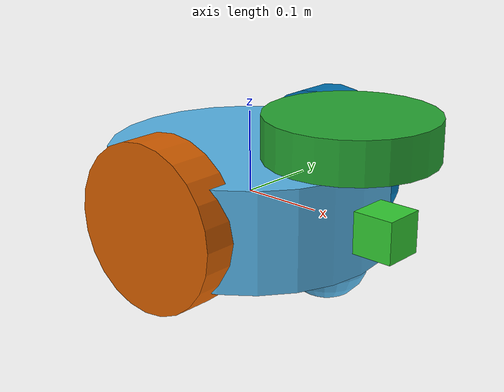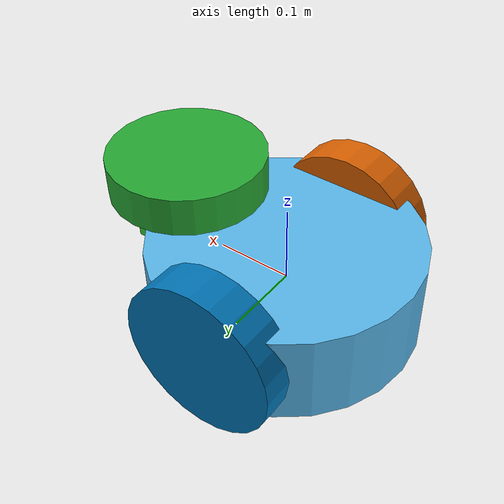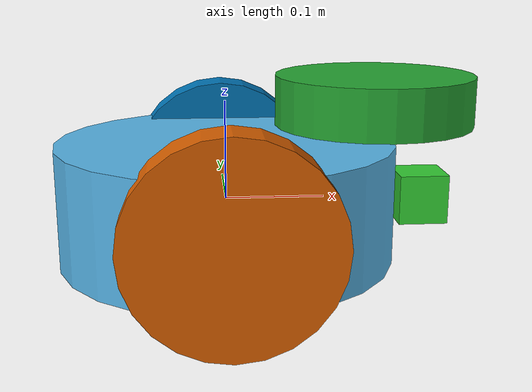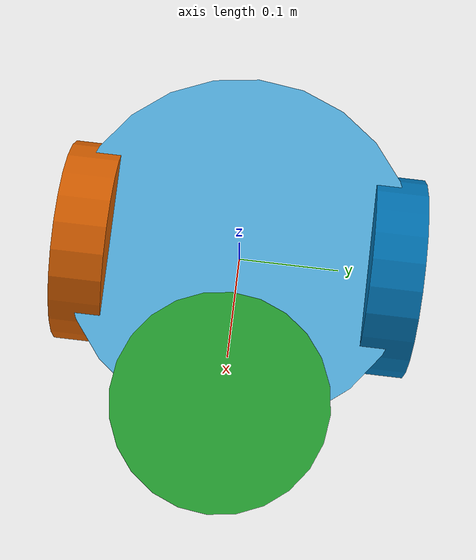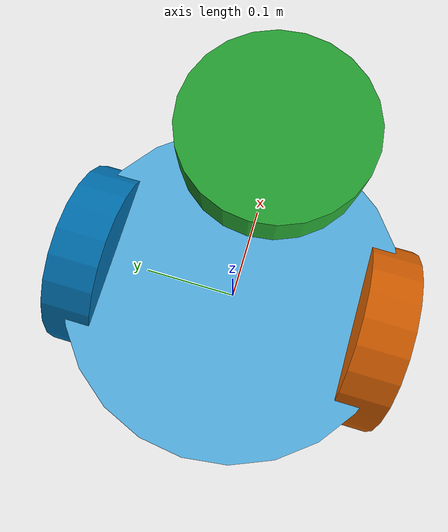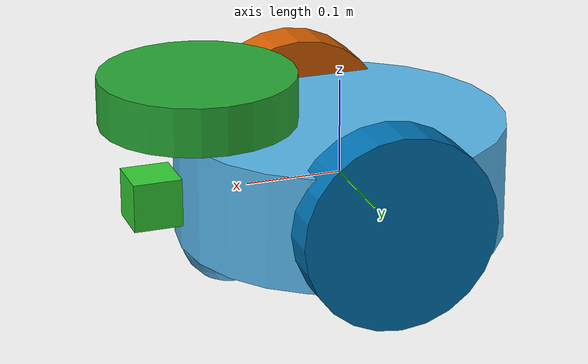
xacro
<?xml version="1.0"?>
<robot name="my_robot" xmlns:xacro="http://www.ros.org/wiki/xacro">

  <!-- Gazebo extension file -->
  <xacro:include filename="$(find myrobot_description)/urdf/my_robot.gazebo" />

  <!-- Base footprint -->
  <link name="robot_footprint" />

  <joint name="robot_footprint_joint" type="fixed">
    <origin xyz="0 0 0" rpy="0 0 0"/>
    <parent link="robot_footprint"/>
    <child link="chassis"/>
  </joint>

  <!-- === CHASSIS === -->
  <link name="chassis">
    <inertial>
      <mass value="15.0"/>
      <origin xyz="0.0 0 0" rpy="0 0 0"/>
      <inertia ixx="0.15" ixy="0" ixz="0" iyy="0.15" iyz="0" izz="0.2"/>
    </inertial>

    <collision name="collision">
      <origin xyz="0 0 0" rpy="0 0 0"/>
      <geometry>
        <cylinder radius="0.17" length="0.12"/>
      </geometry>
    </collision>

    <visual name="chassis_visual">
      <origin xyz="0 0 0" rpy="0 0 0"/>
      <geometry>
        <cylinder radius="0.17" length="0.12"/>
      </geometry>
    </visual>

    <!-- Casters -->
    <collision name="back_caster_collision">
      <origin xyz="-0.12 0 -0.05" rpy="0 0 0"/>
      <geometry><sphere radius="0.0499"/></geometry>
    </collision>
    <visual name="back_caster_visual">
      <origin xyz="-0.12 0 -0.05" rpy="0 0 0"/>
      <geometry><sphere radius="0.05"/></geometry>
    </visual>

    <collision name="front_caster_collision">
      <origin xyz="0.12 0 -0.05" rpy="0 0 0"/>
      <geometry><sphere radius="0.0499"/></geometry>
    </collision>
    <visual name="front_caster_visual">
      <origin xyz="0.12 0 -0.05" rpy="0 0 0"/>
      <geometry><sphere radius="0.05"/></geometry>
    </visual>
  </link>

  <!-- === CAMERA === -->
  <link name="camera">
    <inertial>
      <mass value="0.1"/>
      <origin xyz="0 0 0" rpy="0 0 0"/>
      <inertia
          ixx="1e-6" ixy="0" ixz="0"
          iyy="1e-6" iyz="0"
          izz="1e-6"
      />
    </inertial>
    <collision>
      <geometry><box size="0.05 0.05 0.05"/></geometry>
    </collision>
    <visual>
      <geometry><box size="0.05 0.05 0.05"/></geometry>
      <material name="camera_color">
        <color rgba="0.2 0.8 0.2 1.0"/>
      </material>
    </visual>
  </link>

  <joint name="camera_joint" type="fixed">
    <origin xyz="0.2 0 0" rpy="0 0 0"/>
    <parent link="chassis"/>
    <child link="camera"/>
  </joint>

  <!-- === LIDAR === -->
  <link name="lidar">
        <visual>
            <geometry>
                <cylinder length="0.05" radius="0.1"/>
            </geometry>
            <material name="green"/>
        </visual>
        <collision>
            <geometry>
                <cylinder length="0.05" radius="0.1"/>
            </geometry>
        </collision>
        <inertial>
            <mass value="0.2"/>
            <inertia ixx="0.001" ixy="0" ixz="0" iyy="0.001" iyz="0" izz="0.001"/>
        </inertial>
    </link>

  <joint name="lidar_joint" type="fixed">
        <parent link="chassis"/>
        <child link="lidar"/>
        <origin xyz="0.15 0 0.1" rpy="0 0 0"/>
        <axis xyz="0 0 1"/>
    </joint>

  <!-- === WHEELS === -->
  <link name="left_wheel">
    <inertial>
      <mass value="5"/>
      <origin xyz="0 0 0" rpy="0 1.5707 1.5707"/>
      <inertia ixx="0.1" ixy="0" ixz="0" iyy="0.1" iyz="0" izz="0.1"/>
    </inertial>
    <collision>
      <origin xyz="0 0 0" rpy="0 1.5707 1.5707"/>
      <geometry><cylinder radius="0.1" length="0.05"/></geometry>
    </collision>
    <visual>
      <origin xyz="0 0 0" rpy="0 1.5707 1.5707"/>
      <geometry><cylinder radius="0.1" length="0.05"/></geometry>
    </visual>
  </link>

  <joint name="left_wheel_joint" type="continuous">
    <origin xyz="0 0.15 0" rpy="0 0 0"/>
    <parent link="chassis"/>
    <child link="left_wheel"/>
    <axis xyz="0 1 0"/>
  </joint>

  <link name="right_wheel">
    <inertial>
      <mass value="5"/>
      <origin xyz="0 0 0" rpy="0 1.5707 1.5707"/>
      <inertia ixx="0.1" ixy="0" ixz="0" iyy="0.1" iyz="0" izz="0.1"/>
    </inertial>
    <collision>
      <origin xyz="0 0 0" rpy="0 1.5707 1.5707"/>
      <geometry><cylinder radius="0.1" length="0.05"/></geometry>
    </collision>
    <visual>
      <origin xyz="0 0 0" rpy="0 1.5707 1.5707"/>
      <geometry><cylinder radius="0.1" length="0.05"/></geometry>
    </visual>
  </link>

  <joint name="right_wheel_joint" type="continuous">
    <origin xyz="0 -0.15 0" rpy="0 0 0"/>
    <parent link="chassis"/>
    <child link="right_wheel"/>
    <axis xyz="0 1 0"/>
  </joint>

</robot>
